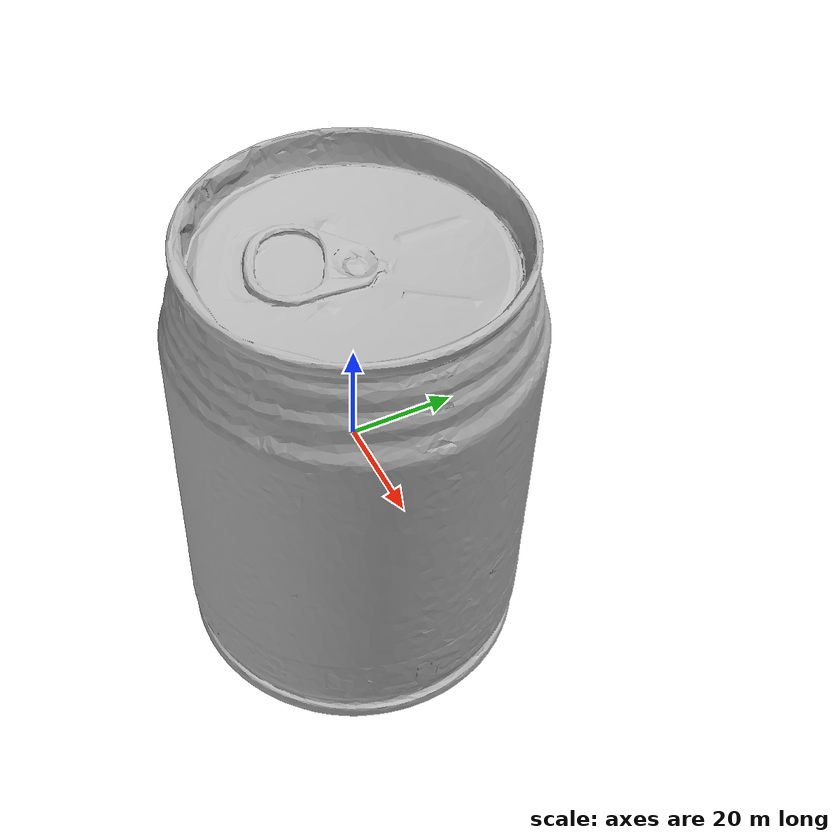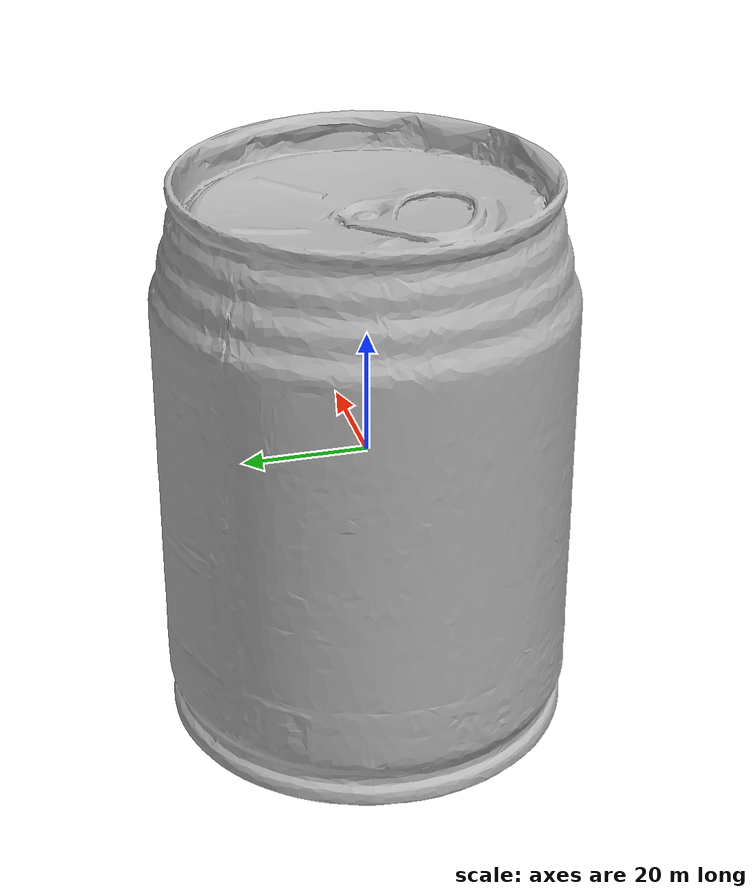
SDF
<sdf version="1.4">
 <world name="default">
  <light name="light1" type="point">
   <pose>0 0 1 0 0 0</pose>
   <diffuse>3 3 3 1</diffuse>
   <specular>3 3 3 1</specular>
  </light>
  <light name="light2" type="point">
   <pose>0 0.5 2 0 0 0</pose>
   <diffuse>1 1 1 1</diffuse>
   <specular>1 1 1 1</specular>
  </light>
  <light name="light3" type="point">
   <pose>0 0.5 2 0 0 0</pose>
   <diffuse>3 3 3 1</diffuse>
   <specular>3 3 3 1</specular>
  </light>
  <scene><ambient>0.7 0.7 0.7</ambient></scene>
  <model name="box1">
   <link name="link_box1">
    <collision name="default">
     <geometry>
      <mesh><uri>model://wooden_puzzle1/collision_meshes/collision.obj</uri><scale>1.0 1.0 1.0</scale></mesh>
     </geometry>
     <surface><friction><ode><mu>0.5</mu><mu2>0.5</mu2></ode></friction></surface>
    </collision>
    <visual name="default">
     <geometry>
      <mesh><uri>model://wooden_puzzle1/visual_meshes/visual.dae</uri><scale>1.0 1.0 1.0</scale></mesh>
     </geometry>
    </visual>
    <inertial>
     <mass>0.020629532635211945</mass>
     <pose>-0.0001735068071866408 7.972260937094688e-05 -9.191555000143126e-05 -0.07784798349428995 -0.2636160818751574 -0.552872324185161</pose>
     <inertia>
      <ixx>3.8922285e-06</ixx>
      <iyy>3.817302e-06</iyy>
      <izz>3.8628423e-06</izz>
      <ixy>0</ixy>
      <ixz>0</ixz>
      <iyz>0</iyz>
     </inertia>
    </inertial>
   </link>
   <pose>0.17000669240951538 -0.3100062906742096 0.016866670921444893 0.006190141407564505 -0.00970943664539139 -0.00013443050139231674</pose>
  </model>
  <model name="box3">
   <link name="link_box3">
    <collision name="default">
     <geometry>
      <mesh><uri>model://wooden_puzzle2/collision_meshes/collision.obj</uri><scale>1.0 1.0 1.0</scale></mesh>
     </geometry>
     <surface><friction><ode><mu>0.5</mu><mu2>0.5</mu2></ode></friction></surface>
    </collision>
    <visual name="default">
     <geometry>
      <mesh><uri>model://wooden_puzzle2/visual_meshes/visual.dae</uri><scale>1.0 1.0 1.0</scale></mesh>
     </geometry>
    </visual>
    <inertial>
     <mass>0.05583015829324722</mass>
     <pose>2.7402536943554878e-05 4.997663199901581e-05 6.587122334167361e-05 -0.19203199902598803 0.6112853789707493 -0.6338693450254121</pose>
     <inertia>
      <ixx>1.0378231e-05</ixx>
      <iyy>1.06642165e-05</iyy>
      <izz>1.0512509e-05</izz>
      <ixy>0</ixy>
      <ixz>0</ixz>
      <iyz>0</iyz>
     </inertia>
    </inertial>
   </link>
   <pose>-0.020105188712477684 -0.28002357482910156 0.01691773533821106 0.020848602898594564 0.0007211489377806055 0.00023642505665975917</pose>
  </model>
  <model name="can1">
   <link name="link_can1">
    <collision name="default">
     <geometry>
      <mesh><uri>model://pepsi/collision_meshes/collision.obj</uri><scale>1.0 1.0 1.0</scale></mesh>
     </geometry>
     <surface><friction><ode><mu>0.5</mu><mu2>0.5</mu2></ode></friction></surface>
    </collision>
    <visual name="default">
     <geometry><mesh><uri>model://pepsi/visual_meshes/visual.dae</uri><scale>1.0 1.0 1.0</scale></mesh></geometry>
    </visual>
    <inertial>
     <mass>0.49348899722099304</mass>
     <pose>-7.5590331107378e-05 2.9931279641459696e-05 -0.0003384356386959553 -0.0010677622415870868 -0.0021735774955872703 0.5673701275352521</pose>
     <inertia>
      <ixx>0.0009831247</ixx>
      <iyy>0.0009824084</iyy>
      <izz>0.00020924417</izz>
      <ixy>0</ixy>
      <ixz>0</ixz>
      <iyz>0</iyz>
     </inertia>
    </inertial>
   </link>
   <pose>0.02001815102994442 0.3099518120288849 0.0744962990283966 -1.655699443688446e-05 1.7905188438344813e-06 -4.31123968885789e-06</pose>
  </model>
  <model name="can2">
   <link name="link_can2">
    <collision name="default">
     <geometry>
      <mesh><uri>model://redbull/collision_meshes/collision.obj</uri><scale>1.0 1.0 1.0</scale></mesh>
     </geometry>
     <surface><friction><ode><mu>0.5</mu><mu2>0.5</mu2></ode></friction></surface>
    </collision>
    <visual name="default">
     <geometry>
      <mesh><uri>model://redbull/visual_meshes/visual.dae</uri><scale>1.0 1.0 1.0</scale></mesh>
     </geometry>
    </visual>
    <inertial>
     <mass>0.3443465232849121</mass>
     <pose>-2.2127078409539536e-05 -0.00012659528874792159 -0.0006860987632535398 0.0011367237692686564 -0.010800964902263904 0.5859097418646089</pose>
     <inertia>
      <ixx>0.0003237599</ixx>
      <iyy>0.00032403314</iyy>
      <izz>0.00019212745</izz>
      <ixy>0</ixy>
      <ixz>0</ixz>
      <iyz>0</iyz>
     </inertia>
    </inertial>
   </link>
   <pose>0.140159472823143 0.30060267448425293 0.04638563469052315 -0.01048951049299222 0.007260016898862242 -0.0002242336953198962</pose>
  </model>
 </world>
</sdf>
